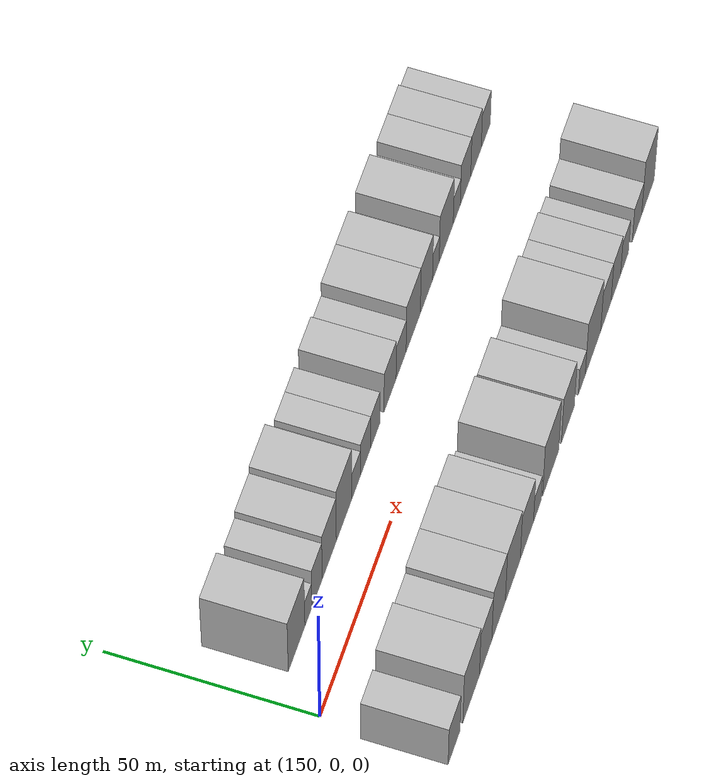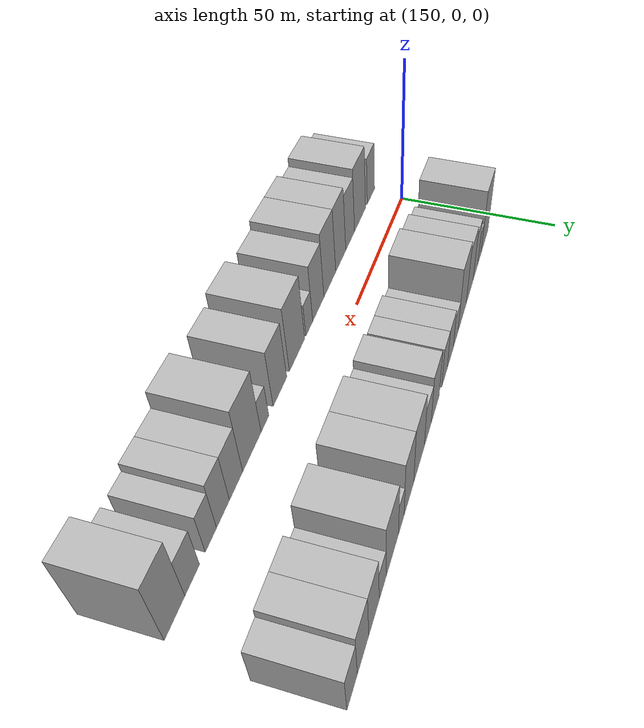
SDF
<sdf version="1.6">
 <world name="default">
  <model name="building_17">
   <static>1</static>
   <pose>163.7440 20.0000 0 0.000000 0.000000 1.570796</pose>
   <link name="link">
    <pose>0 0 12.00 0 0 0</pose>
    <collision name="collision"><geometry><box><size>20.0000 11.4867 24.0000</size></box></geometry></collision>
    <visual name="visual">
     <cast_shadows>0</cast_shadows>
     <geometry><box><size>20.0000 11.4867 24.0000</size></box></geometry>
     <material>
      <script>
       <uri>model://HANNAS_wall/materials/scripts</uri>
       <uri>model://HANNAS_wall/materials/textures</uri>
       <name>vrc/HANNAS_wall</name>
      </script>
     </material>
    </visual>
   </link>
  </model>
  <model name="building_18">
   <static>1</static>
   <pose>171.9253 20.0000 0 0.000000 0.000000 1.570796</pose>
   <link name="link">
    <pose>0 0 6.00 0 0 0</pose>
    <collision name="collision"><geometry><box><size>20.0000 4.8759 12.0000</size></box></geometry></collision>
    <visual name="visual">
     <cast_shadows>0</cast_shadows>
     <geometry><box><size>20.0000 4.8759 12.0000</size></box></geometry>
     <material>
      <script>
       <uri>model://HANNAS_wall/materials/scripts</uri>
       <uri>model://HANNAS_wall/materials/textures</uri>
       <name>vrc/HANNAS_wall</name>
      </script>
     </material>
    </visual>
   </link>
  </model>
  <model name="building_19">
   <static>1</static>
   <pose>177.9646 20.0000 0 0.000000 0.000000 1.570796</pose>
   <link name="link">
    <pose>0 0 9.00 0 0 0</pose>
    <collision name="collision"><geometry><box><size>20.0000 7.2027 18.0000</size></box></geometry></collision>
    <visual name="visual">
     <cast_shadows>0</cast_shadows>
     <geometry><box><size>20.0000 7.2027 18.0000</size></box></geometry>
     <material>
      <script>
       <uri>model://HANNAS_wall/materials/scripts</uri>
       <uri>model://HANNAS_wall/materials/textures</uri>
       <name>vrc/HANNAS_wall</name>
      </script>
     </material>
    </visual>
   </link>
  </model>
  <model name="building_20">
   <static>1</static>
   <pose>186.5161 20.0000 0 0.000000 0.000000 1.570796</pose>
   <link name="link">
    <pose>0 0 10.50 0 0 0</pose>
    <collision name="collision"><geometry><box><size>20.0000 9.9005 21.0000</size></box></geometry></collision>
    <visual name="visual">
     <cast_shadows>0</cast_shadows>
     <geometry><box><size>20.0000 9.9005 21.0000</size></box></geometry>
     <material>
      <script>
       <uri>model://HANNAS_wall/materials/scripts</uri>
       <uri>model://HANNAS_wall/materials/textures</uri>
       <name>vrc/HANNAS_wall</name>
      </script>
     </material>
    </visual>
   </link>
  </model>
  <model name="building_21">
   <static>1</static>
   <pose>196.9887 20.0000 0 0.000000 0.000000 1.570796</pose>
   <link name="link">
    <pose>0 0 12.00 0 0 0</pose>
    <collision name="collision"><geometry><box><size>20.0000 11.0446 24.0000</size></box></geometry></collision>
    <visual name="visual">
     <cast_shadows>0</cast_shadows>
     <geometry><box><size>20.0000 11.0446 24.0000</size></box></geometry>
     <material>
      <script>
       <uri>model://HANNAS_wall/materials/scripts</uri>
       <uri>model://HANNAS_wall/materials/textures</uri>
       <name>vrc/HANNAS_wall</name>
      </script>
     </material>
    </visual>
   </link>
  </model>
  <model name="building_22">
   <static>1</static>
   <pose>205.5087 20.0000 0 0.000000 0.000000 1.570796</pose>
   <link name="link">
    <pose>0 0 6.00 0 0 0</pose>
    <collision name="collision"><geometry><box><size>20.0000 5.9953 12.0000</size></box></geometry></collision>
    <visual name="visual">
     <cast_shadows>0</cast_shadows>
     <geometry><box><size>20.0000 5.9953 12.0000</size></box></geometry>
     <material>
      <script>
       <uri>model://HANNAS_wall/materials/scripts</uri>
       <uri>model://HANNAS_wall/materials/textures</uri>
       <name>vrc/HANNAS_wall</name>
      </script>
     </material>
    </visual>
   </link>
  </model>
  <model name="building_23">
   <static>1</static>
   <pose>212.2423 20.0000 0 0.000000 0.000000 1.570796</pose>
   <link name="link">
    <pose>0 0 7.50 0 0 0</pose>
    <collision name="collision"><geometry><box><size>20.0000 7.4719 15.0000</size></box></geometry></collision>
    <visual name="visual">
     <cast_shadows>0</cast_shadows>
     <geometry><box><size>20.0000 7.4719 15.0000</size></box></geometry>
     <material>
      <script>
       <uri>model://HANNAS_wall/materials/scripts</uri>
       <uri>model://HANNAS_wall/materials/textures</uri>
       <name>vrc/HANNAS_wall</name>
      </script>
     </material>
    </visual>
   </link>
  </model>
  <model name="building_24">
   <static>1</static>
   <pose>219.1995 20.0000 0 0.000000 0.000000 1.570796</pose>
   <link name="link">
    <pose>0 0 7.50 0 0 0</pose>
    <collision name="collision"><geometry><box><size>20.0000 6.4427 15.0000</size></box></geometry></collision>
    <visual name="visual">
     <cast_shadows>0</cast_shadows>
     <geometry><box><size>20.0000 6.4427 15.0000</size></box></geometry>
     <material>
      <script>
       <uri>model://HANNAS_wall/materials/scripts</uri>
       <uri>model://HANNAS_wall/materials/textures</uri>
       <name>vrc/HANNAS_wall</name>
      </script>
     </material>
    </visual>
   </link>
  </model>
  <model name="building_25">
   <static>1</static>
   <pose>229.7864 20.0000 0 0.000000 0.000000 1.570796</pose>
   <link name="link">
    <pose>0 0 9.00 0 0 0</pose>
    <collision name="collision"><geometry><box><size>20.0000 8.7310 18.0000</size></box></geometry></collision>
    <visual name="visual">
     <cast_shadows>0</cast_shadows>
     <geometry><box><size>20.0000 8.7310 18.0000</size></box></geometry>
     <material>
      <script>
       <uri>model://HANNAS_wall/materials/scripts</uri>
       <uri>model://HANNAS_wall/materials/textures</uri>
       <name>vrc/HANNAS_wall</name>
      </script>
     </material>
    </visual>
   </link>
  </model>
  <model name="building_26">
   <static>1</static>
   <pose>237.7933 20.0000 0 0.000000 0.000000 1.570796</pose>
   <link name="link">
    <pose>0 0 7.50 0 0 0</pose>
    <collision name="collision"><geometry><box><size>20.0000 7.2829 15.0000</size></box></geometry></collision>
    <visual name="visual">
     <cast_shadows>0</cast_shadows>
     <geometry><box><size>20.0000 7.2829 15.0000</size></box></geometry>
     <material>
      <script>
       <uri>model://HANNAS_wall/materials/scripts</uri>
       <uri>model://HANNAS_wall/materials/textures</uri>
       <name>vrc/HANNAS_wall</name>
      </script>
     </material>
    </visual>
   </link>
  </model>
  <model name="building_27">
   <static>1</static>
   <pose>246.6524 20.0000 0 0.000000 0.000000 1.570796</pose>
   <link name="link">
    <pose>0 0 10.50 0 0 0</pose>
    <collision name="collision"><geometry><box><size>20.0000 10.4353 21.0000</size></box></geometry></collision>
    <visual name="visual">
     <cast_shadows>0</cast_shadows>
     <geometry><box><size>20.0000 10.4353 21.0000</size></box></geometry>
     <material>
      <script>
       <uri>model://HANNAS_wall/materials/scripts</uri>
       <uri>model://HANNAS_wall/materials/textures</uri>
       <name>vrc/HANNAS_wall</name>
      </script>
     </material>
    </visual>
   </link>
  </model>
  <model name="building_28">
   <static>1</static>
   <pose>256.3481 20.0000 0 0.000000 0.000000 1.570796</pose>
   <link name="link">
    <pose>0 0 10.50 0 0 0</pose>
    <collision name="collision"><geometry><box><size>20.0000 8.9560 21.0000</size></box></geometry></collision>
    <visual name="visual">
     <cast_shadows>0</cast_shadows>
     <geometry><box><size>20.0000 8.9560 21.0000</size></box></geometry>
     <material>
      <script>
       <uri>model://HANNAS_wall/materials/scripts</uri>
       <uri>model://HANNAS_wall/materials/textures</uri>
       <name>vrc/HANNAS_wall</name>
      </script>
     </material>
    </visual>
   </link>
  </model>
  <model name="building_29">
   <static>1</static>
   <pose>263.2958 20.0000 0 0.000000 0.000000 1.570796</pose>
   <link name="link">
    <pose>0 0 6.00 0 0 0</pose>
    <collision name="collision"><geometry><box><size>20.0000 4.9395 12.0000</size></box></geometry></collision>
    <visual name="visual">
     <cast_shadows>0</cast_shadows>
     <geometry><box><size>20.0000 4.9395 12.0000</size></box></geometry>
     <material>
      <script>
       <uri>model://HANNAS_wall/materials/scripts</uri>
       <uri>model://HANNAS_wall/materials/textures</uri>
       <name>vrc/HANNAS_wall</name>
      </script>
     </material>
    </visual>
   </link>
  </model>
  <model name="building_30">
   <static>1</static>
   <pose>270.9607 20.0000 0 0.000000 0.000000 1.570796</pose>
   <link name="link">
    <pose>0 0 10.50 0 0 0</pose>
    <collision name="collision"><geometry><box><size>20.0000 10.3903 21.0000</size></box></geometry></collision>
    <visual name="visual">
     <cast_shadows>0</cast_shadows>
     <geometry><box><size>20.0000 10.3903 21.0000</size></box></geometry>
     <material>
      <script>
       <uri>model://HANNAS_wall/materials/scripts</uri>
       <uri>model://HANNAS_wall/materials/textures</uri>
       <name>vrc/HANNAS_wall</name>
      </script>
     </material>
    </visual>
   </link>
  </model>
  <model name="building_31">
   <static>1</static>
   <pose>278.8048 20.0000 0 0.000000 0.000000 1.570796</pose>
   <link name="link">
    <pose>0 0 6.00 0 0 0</pose>
    <collision name="collision"><geometry><box><size>20.0000 5.2979 12.0000</size></box></geometry></collision>
    <visual name="visual">
     <cast_shadows>0</cast_shadows>
     <geometry><box><size>20.0000 5.2979 12.0000</size></box></geometry>
     <material>
      <script>
       <uri>model://HANNAS_wall/materials/scripts</uri>
       <uri>model://HANNAS_wall/materials/textures</uri>
       <name>vrc/HANNAS_wall</name>
      </script>
     </material>
    </visual>
   </link>
  </model>
  <model name="building_32">
   <static>1</static>
   <pose>285.3369 20.0000 0 0.000000 0.000000 1.570796</pose>
   <link name="link">
    <pose>0 0 9.00 0 0 0</pose>
    <collision name="collision"><geometry><box><size>20.0000 7.7664 18.0000</size></box></geometry></collision>
    <visual name="visual">
     <cast_shadows>0</cast_shadows>
     <geometry><box><size>20.0000 7.7664 18.0000</size></box></geometry>
     <material>
      <script>
       <uri>model://HANNAS_wall/materials/scripts</uri>
       <uri>model://HANNAS_wall/materials/textures</uri>
       <name>vrc/HANNAS_wall</name>
      </script>
     </material>
    </visual>
   </link>
  </model>
  <model name="building_33">
   <static>1</static>
   <pose>293.1914 20.0000 0 0.000000 0.000000 1.570796</pose>
   <link name="link">
    <pose>0 0 9.00 0 0 0</pose>
    <collision name="collision"><geometry><box><size>20.0000 7.9426 18.0000</size></box></geometry></collision>
    <visual name="visual">
     <cast_shadows>0</cast_shadows>
     <geometry><box><size>20.0000 7.9426 18.0000</size></box></geometry>
     <material>
      <script>
       <uri>model://HANNAS_wall/materials/scripts</uri>
       <uri>model://HANNAS_wall/materials/textures</uri>
       <name>vrc/HANNAS_wall</name>
      </script>
     </material>
    </visual>
   </link>
  </model>
  <model name="building_34">
   <static>1</static>
   <pose>300.5846 20.0000 0 0.000000 0.000000 1.570796</pose>
   <link name="link">
    <pose>0 0 7.50 0 0 0</pose>
    <collision name="collision"><geometry><box><size>20.0000 6.8439 15.0000</size></box></geometry></collision>
    <visual name="visual">
     <cast_shadows>0</cast_shadows>
     <geometry><box><size>20.0000 6.8439 15.0000</size></box></geometry>
     <material>
      <script>
       <uri>model://HANNAS_wall/materials/scripts</uri>
       <uri>model://HANNAS_wall/materials/textures</uri>
       <name>vrc/HANNAS_wall</name>
      </script>
     </material>
    </visual>
   </link>
  </model>
  <model name="building_50">
   <static>1</static>
   <pose>151.9145 -20.0000 0 0.000000 0.000000 1.570796</pose>
   <link name="link">
    <pose>0 0 9.00 0 0 0</pose>
    <collision name="collision"><geometry><box><size>20.0000 8.4740 18.0000</size></box></geometry></collision>
    <visual name="visual">
     <cast_shadows>0</cast_shadows>
     <geometry><box><size>20.0000 8.4740 18.0000</size></box></geometry>
     <material>
      <script>
       <uri>model://HANNAS_wall/materials/scripts</uri>
       <uri>model://HANNAS_wall/materials/textures</uri>
       <name>vrc/HANNAS_wall</name>
      </script>
     </material>
    </visual>
   </link>
  </model>
  <model name="building_51">
   <static>1</static>
   <pose>164.0931 -20.0000 0 0.000000 0.000000 1.570796</pose>
   <link name="link">
    <pose>0 0 12.00 0 0 0</pose>
    <collision name="collision"><geometry><box><size>20.0000 11.8833 24.0000</size></box></geometry></collision>
    <visual name="visual">
     <cast_shadows>0</cast_shadows>
     <geometry><box><size>20.0000 11.8833 24.0000</size></box></geometry>
     <material>
      <script>
       <uri>model://HANNAS_wall/materials/scripts</uri>
       <uri>model://HANNAS_wall/materials/textures</uri>
       <name>vrc/HANNAS_wall</name>
      </script>
     </material>
    </visual>
   </link>
  </model>
  <model name="building_52">
   <static>1</static>
   <pose>174.5335 -20.0000 0 0.000000 0.000000 1.570796</pose>
   <link name="link">
    <pose>0 0 10.50 0 0 0</pose>
    <collision name="collision"><geometry><box><size>20.0000 8.9974 21.0000</size></box></geometry></collision>
    <visual name="visual">
     <cast_shadows>0</cast_shadows>
     <geometry><box><size>20.0000 8.9974 21.0000</size></box></geometry>
     <material>
      <script>
       <uri>model://HANNAS_wall/materials/scripts</uri>
       <uri>model://HANNAS_wall/materials/textures</uri>
       <name>vrc/HANNAS_wall</name>
      </script>
     </material>
    </visual>
   </link>
  </model>
  <model name="building_53">
   <static>1</static>
   <pose>183.9404 -20.0000 0 0.000000 0.000000 1.570796</pose>
   <link name="link">
    <pose>0 0 12.00 0 0 0</pose>
    <collision name="collision"><geometry><box><size>20.0000 9.8164 24.0000</size></box></geometry></collision>
    <visual name="visual">
     <cast_shadows>0</cast_shadows>
     <geometry><box><size>20.0000 9.8164 24.0000</size></box></geometry>
     <material>
      <script>
       <uri>model://HANNAS_wall/materials/scripts</uri>
       <uri>model://HANNAS_wall/materials/textures</uri>
       <name>vrc/HANNAS_wall</name>
      </script>
     </material>
    </visual>
   </link>
  </model>
  <model name="building_54">
   <static>1</static>
   <pose>194.3184 -20.0000 0 0.000000 0.000000 1.570796</pose>
   <link name="link">
    <pose>0 0 12.00 0 0 0</pose>
    <collision name="collision"><geometry><box><size>20.0000 10.9396 24.0000</size></box></geometry></collision>
    <visual name="visual">
     <cast_shadows>0</cast_shadows>
     <geometry><box><size>20.0000 10.9396 24.0000</size></box></geometry>
     <material>
      <script>
       <uri>model://HANNAS_wall/materials/scripts</uri>
       <uri>model://HANNAS_wall/materials/textures</uri>
       <name>vrc/HANNAS_wall</name>
      </script>
     </material>
    </visual>
   </link>
  </model>
  <model name="building_55">
   <static>1</static>
   <pose>204.6693 -20.0000 0 0.000000 0.000000 1.570796</pose>
   <link name="link">
    <pose>0 0 10.50 0 0 0</pose>
    <collision name="collision"><geometry><box><size>20.0000 9.7622 21.0000</size></box></geometry></collision>
    <visual name="visual">
     <cast_shadows>0</cast_shadows>
     <geometry><box><size>20.0000 9.7622 21.0000</size></box></geometry>
     <material>
      <script>
       <uri>model://HANNAS_wall/materials/scripts</uri>
       <uri>model://HANNAS_wall/materials/textures</uri>
       <name>vrc/HANNAS_wall</name>
      </script>
     </material>
    </visual>
   </link>
  </model>
  <model name="building_56">
   <static>1</static>
   <pose>212.4023 -20.0000 0 0.000000 0.000000 1.570796</pose>
   <link name="link">
    <pose>0 0 6.00 0 0 0</pose>
    <collision name="collision"><geometry><box><size>20.0000 5.7037 12.0000</size></box></geometry></collision>
    <visual name="visual">
     <cast_shadows>0</cast_shadows>
     <geometry><box><size>20.0000 5.7037 12.0000</size></box></geometry>
     <material>
      <script>
       <uri>model://HANNAS_wall/materials/scripts</uri>
       <uri>model://HANNAS_wall/materials/textures</uri>
       <name>vrc/HANNAS_wall</name>
      </script>
     </material>
    </visual>
   </link>
  </model>
  <model name="building_57">
   <static>1</static>
   <pose>222.2526 -20.0000 0 0.000000 0.000000 1.570796</pose>
   <link name="link">
    <pose>0 0 12.00 0 0 0</pose>
    <collision name="collision"><geometry><box><size>20.0000 11.9970 24.0000</size></box></geometry></collision>
    <visual name="visual">
     <cast_shadows>0</cast_shadows>
     <geometry><box><size>20.0000 11.9970 24.0000</size></box></geometry>
     <material>
      <script>
       <uri>model://HANNAS_wall/materials/scripts</uri>
       <uri>model://HANNAS_wall/materials/textures</uri>
       <name>vrc/HANNAS_wall</name>
      </script>
     </material>
    </visual>
   </link>
  </model>
  <model name="building_58">
   <static>1</static>
   <pose>235.1829 -20.0000 0 0.000000 0.000000 1.570796</pose>
   <link name="link">
    <pose>0 0 10.50 0 0 0</pose>
    <collision name="collision"><geometry><box><size>20.0000 9.8635 21.0000</size></box></geometry></collision>
    <visual name="visual">
     <cast_shadows>0</cast_shadows>
     <geometry><box><size>20.0000 9.8635 21.0000</size></box></geometry>
     <material>
      <script>
       <uri>model://HANNAS_wall/materials/scripts</uri>
       <uri>model://HANNAS_wall/materials/textures</uri>
       <name>vrc/HANNAS_wall</name>
      </script>
     </material>
    </visual>
   </link>
  </model>
  <model name="building_59">
   <static>1</static>
   <pose>245.7292 -20.0000 0 0.000000 0.000000 1.570796</pose>
   <link name="link">
    <pose>0 0 6.00 0 0 0</pose>
    <collision name="collision"><geometry><box><size>20.0000 5.2292 12.0000</size></box></geometry></collision>
    <visual name="visual">
     <cast_shadows>0</cast_shadows>
     <geometry><box><size>20.0000 5.2292 12.0000</size></box></geometry>
     <material>
      <script>
       <uri>model://HANNAS_wall/materials/scripts</uri>
       <uri>model://HANNAS_wall/materials/textures</uri>
       <name>vrc/HANNAS_wall</name>
      </script>
     </material>
    </visual>
   </link>
  </model>
  <model name="building_60">
   <static>1</static>
   <pose>254.2262 -20.0000 0 0.000000 0.000000 1.570796</pose>
   <link name="link">
    <pose>0 0 12.00 0 0 0</pose>
    <collision name="collision"><geometry><box><size>20.0000 11.7650 24.0000</size></box></geometry></collision>
    <visual name="visual">
     <cast_shadows>0</cast_shadows>
     <geometry><box><size>20.0000 11.7650 24.0000</size></box></geometry>
     <material>
      <script>
       <uri>model://HANNAS_wall/materials/scripts</uri>
       <uri>model://HANNAS_wall/materials/textures</uri>
       <name>vrc/HANNAS_wall</name>
      </script>
     </material>
    </visual>
   </link>
  </model>
  <model name="building_61">
   <static>1</static>
   <pose>264.0781 -20.0000 0 0.000000 0.000000 1.570796</pose>
   <link name="link">
    <pose>0 0 9.00 0 0 0</pose>
    <collision name="collision"><geometry><box><size>20.0000 7.9388 18.0000</size></box></geometry></collision>
    <visual name="visual">
     <cast_shadows>0</cast_shadows>
     <geometry><box><size>20.0000 7.9388 18.0000</size></box></geometry>
     <material>
      <script>
       <uri>model://HANNAS_wall/materials/scripts</uri>
       <uri>model://HANNAS_wall/materials/textures</uri>
       <name>vrc/HANNAS_wall</name>
      </script>
     </material>
    </visual>
   </link>
  </model>
  <model name="building_62">
   <static>1</static>
   <pose>271.7073 -20.0000 0 0.000000 0.000000 1.570796</pose>
   <link name="link">
    <pose>0 0 9.00 0 0 0</pose>
    <collision name="collision"><geometry><box><size>20.0000 7.3194 18.0000</size></box></geometry></collision>
    <visual name="visual">
     <cast_shadows>0</cast_shadows>
     <geometry><box><size>20.0000 7.3194 18.0000</size></box></geometry>
     <material>
      <script>
       <uri>model://HANNAS_wall/materials/scripts</uri>
       <uri>model://HANNAS_wall/materials/textures</uri>
       <name>vrc/HANNAS_wall</name>
      </script>
     </material>
    </visual>
   </link>
  </model>
  <model name="building_63">
   <static>1</static>
   <pose>278.4019 -20.0000 0 0.000000 0.000000 1.570796</pose>
   <link name="link">
    <pose>0 0 7.50 0 0 0</pose>
    <collision name="collision"><geometry><box><size>20.0000 6.0697 15.0000</size></box></geometry></collision>
    <visual name="visual">
     <cast_shadows>0</cast_shadows>
     <geometry><box><size>20.0000 6.0697 15.0000</size></box></geometry>
     <material>
      <script>
       <uri>model://HANNAS_wall/materials/scripts</uri>
       <uri>model://HANNAS_wall/materials/textures</uri>
       <name>vrc/HANNAS_wall</name>
      </script>
     </material>
    </visual>
   </link>
  </model>
  <model name="building_64">
   <static>1</static>
   <pose>288.1118 -20.0000 0 0.000000 0.000000 1.570796</pose>
   <link name="link">
    <pose>0 0 7.50 0 0 0</pose>
    <collision name="collision"><geometry><box><size>20.0000 7.3502 15.0000</size></box></geometry></collision>
    <visual name="visual">
     <cast_shadows>0</cast_shadows>
     <geometry><box><size>20.0000 7.3502 15.0000</size></box></geometry>
     <material>
      <script>
       <uri>model://HANNAS_wall/materials/scripts</uri>
       <uri>model://HANNAS_wall/materials/textures</uri>
       <name>vrc/HANNAS_wall</name>
      </script>
     </material>
    </visual>
   </link>
  </model>
  <model name="building_65">
   <static>1</static>
   <pose>296.6608 -20.0000 0 0.000000 0.000000 1.570796</pose>
   <link name="link">
    <pose>0 0 12.00 0 0 0</pose>
    <collision name="collision"><geometry><box><size>20.0000 9.7478 24.0000</size></box></geometry></collision>
    <visual name="visual">
     <cast_shadows>0</cast_shadows>
     <geometry><box><size>20.0000 9.7478 24.0000</size></box></geometry>
     <material>
      <script>
       <uri>model://HANNAS_wall/materials/scripts</uri>
       <uri>model://HANNAS_wall/materials/textures</uri>
       <name>vrc/HANNAS_wall</name>
      </script>
     </material>
    </visual>
   </link>
  </model>
 </world>
</sdf>
